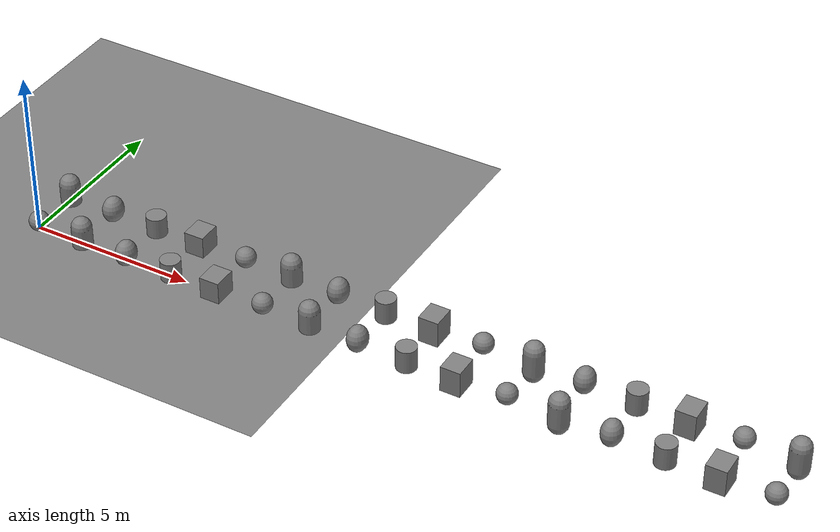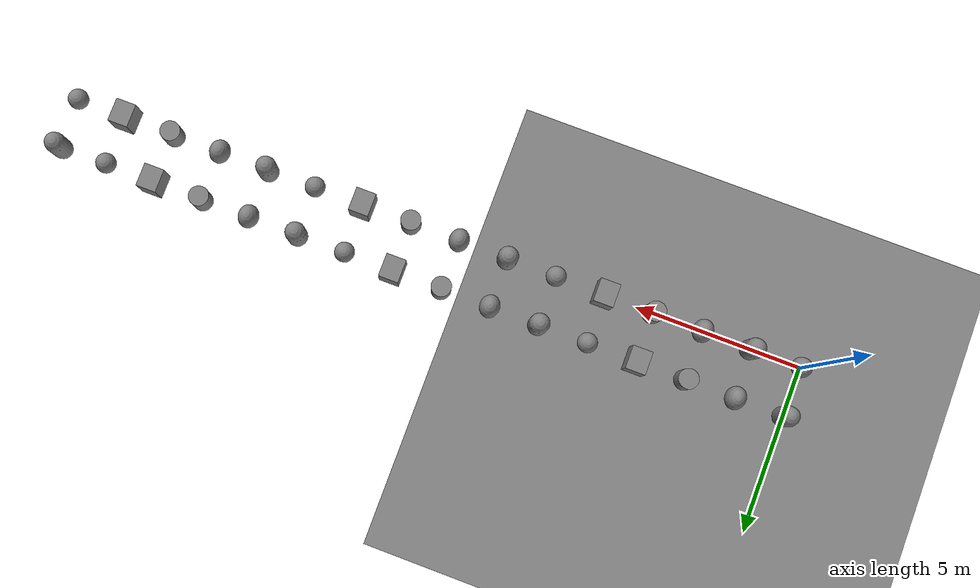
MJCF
<mujoco><worldbody><geom type="plane" size="10 10 .1"/><body pos="0.0 0.0 .25"><freejoint/><geom type="sphere" size=".3 .35 .4"/></body><body pos="1.5 0.0 .25"><freejoint/><geom type="capsule" size=".3 .35 .4"/></body><body pos="3.0 0.0 .25"><freejoint/><geom type="ellipsoid" size=".3 .35 .4"/></body><body pos="4.5 0.0 .25"><freejoint/><geom type="cylinder" size=".3 .35 .4"/></body><body pos="6.0 0.0 .25"><freejoint/><geom type="box" size=".3 .35 .4"/></body><body pos="7.5 0.0 .25"><freejoint/><geom type="sphere" size=".3 .35 .4"/></body><body pos="9.0 0.0 .25"><freejoint/><geom type="capsule" size=".3 .35 .4"/></body><body pos="10.5 0.0 .25"><freejoint/><geom type="ellipsoid" size=".3 .35 .4"/></body><body pos="12.0 0.0 .25"><freejoint/><geom type="cylinder" size=".3 .35 .4"/></body><body pos="13.5 0.0 .25"><freejoint/><geom type="box" size=".3 .35 .4"/></body><body pos="15.0 0.0 .25"><freejoint/><geom type="sphere" size=".3 .35 .4"/></body><body pos="16.5 0.0 .25"><freejoint/><geom type="capsule" size=".3 .35 .4"/></body><body pos="18.0 0.0 .25"><freejoint/><geom type="ellipsoid" size=".3 .35 .4"/></body><body pos="19.5 0.0 .25"><freejoint/><geom type="cylinder" size=".3 .35 .4"/></body><body pos="21.0 0.0 .25"><freejoint/><geom type="box" size=".3 .35 .4"/></body><body pos="22.5 0.0 .25"><freejoint/><geom type="sphere" size=".3 .35 .4"/></body><body pos="0.0 1.5 .25"><freejoint/><geom type="capsule" size=".3 .35 .4"/></body><body pos="1.5 1.5 .25"><freejoint/><geom type="ellipsoid" size=".3 .35 .4"/></body><body pos="3.0 1.5 .25"><freejoint/><geom type="cylinder" size=".3 .35 .4"/></body><body pos="4.5 1.5 .25"><freejoint/><geom type="box" size=".3 .35 .4"/></body><body pos="6.0 1.5 .25"><freejoint/><geom type="sphere" size=".3 .35 .4"/></body><body pos="7.5 1.5 .25"><freejoint/><geom type="capsule" size=".3 .35 .4"/></body><body pos="9.0 1.5 .25"><freejoint/><geom type="ellipsoid" size=".3 .35 .4"/></body><body pos="10.5 1.5 .25"><freejoint/><geom type="cylinder" size=".3 .35 .4"/></body><body pos="12.0 1.5 .25"><freejoint/><geom type="box" size=".3 .35 .4"/></body><body pos="13.5 1.5 .25"><freejoint/><geom type="sphere" size=".3 .35 .4"/></body><body pos="15.0 1.5 .25"><freejoint/><geom type="capsule" size=".3 .35 .4"/></body><body pos="16.5 1.5 .25"><freejoint/><geom type="ellipsoid" size=".3 .35 .4"/></body><body pos="18.0 1.5 .25"><freejoint/><geom type="cylinder" size=".3 .35 .4"/></body><body pos="19.5 1.5 .25"><freejoint/><geom type="box" size=".3 .35 .4"/></body><body pos="21.0 1.5 .25"><freejoint/><geom type="sphere" size=".3 .35 .4"/></body><body pos="22.5 1.5 .25"><freejoint/><geom type="capsule" size=".3 .35 .4"/></body></worldbody></mujoco>
